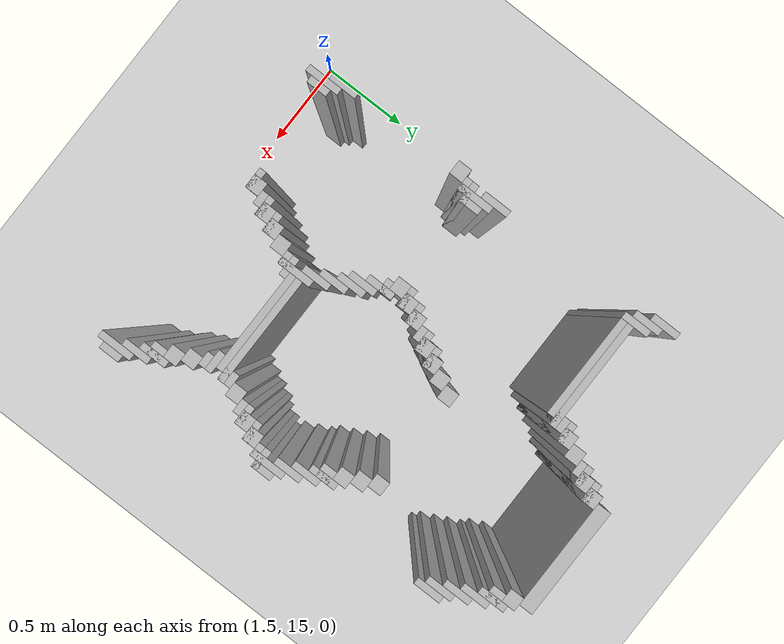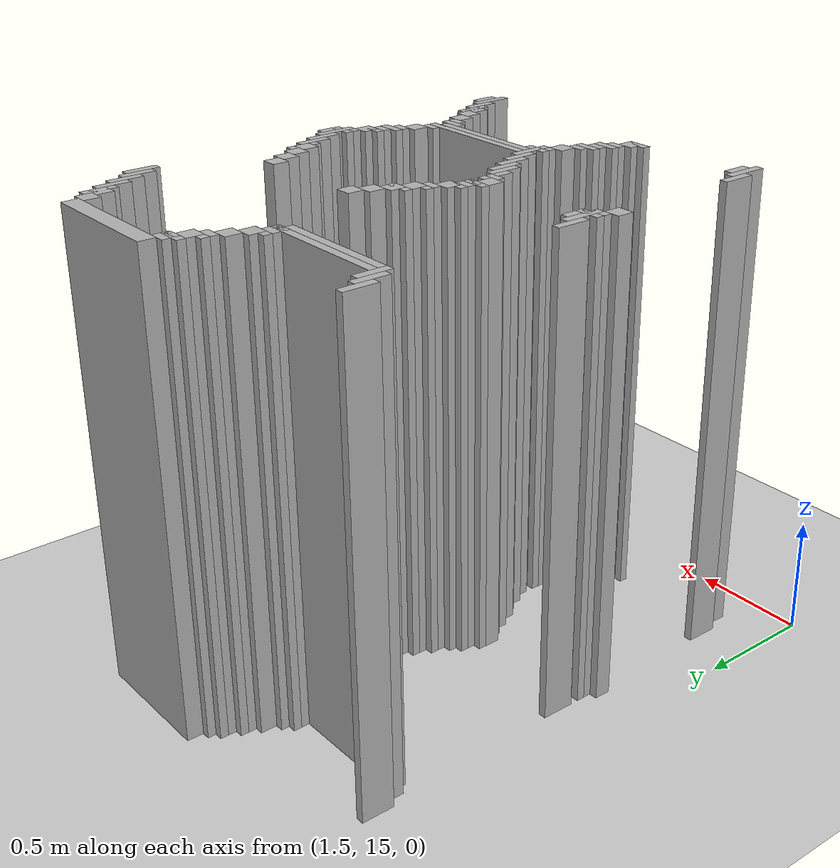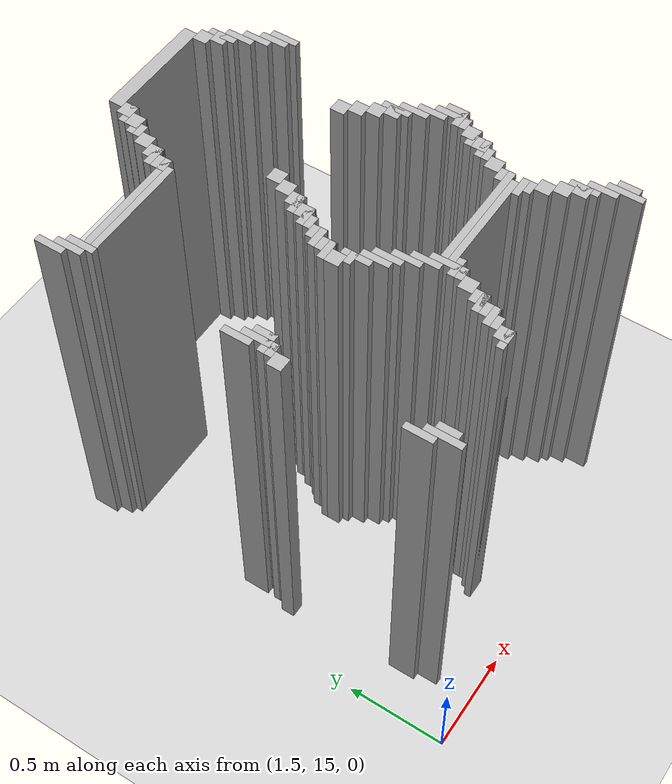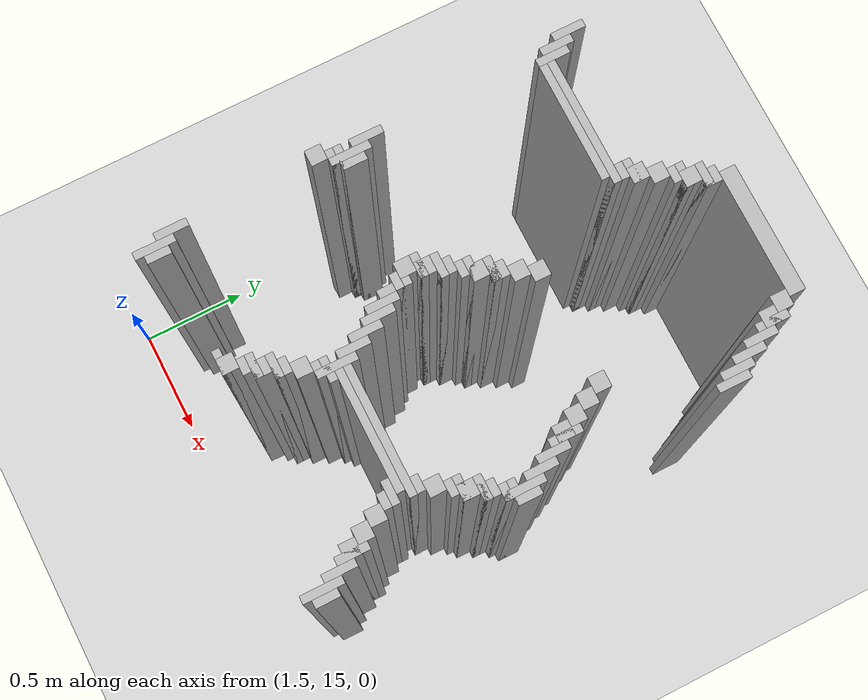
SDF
<sdf version="1.6">
 <world name="slam_world">
  <model name="ground_plane">
   <static>true</static>
   <link name="link">
    <collision name="collision">
     <geometry><plane><normal>0 0 1</normal><size>100 100</size></plane></geometry>
    </collision>
    <visual name="visual">
     <geometry><plane><normal>0 0 1</normal><size>100 100</size></plane></geometry>
     <material>
      <ambient>0.8 0.8 0.8 1</ambient>
      <diffuse>0.8 0.8 0.8 1</diffuse>
      <specular>0.8 0.8 0.8 1</specular>
     </material>
    </visual>
   </link>
  </model>
  <model name="wall_1">
   <static>true</static>
   <pose>2.7494199535962878 17.366589327146173 1.0 0 0 0</pose>
   <link name="link">
    <collision name="collision">
     <geometry><box><size>0.5568445475638051 0.06960556844547564 2.0</size></box></geometry>
    </collision>
    <visual name="visual">
     <geometry><box><size>0.5568445475638051 0.06960556844547564 2.0</size></box></geometry>
     <material><ambient>0.5 0.5 0.5 1</ambient><diffuse>0.7 0.7 0.7 1</diffuse></material>
    </visual>
   </link>
  </model>
  <model name="wall_13">
   <static>true</static>
   <pose>2.470997679814385 17.296983758700694 1.0 0 0 0</pose>
   <link name="link">
    <collision name="collision">
     <geometry><box><size>0.06960556844547564 0.06960556844547564 2.0</size></box></geometry>
    </collision>
    <visual name="visual">
     <geometry><box><size>0.06960556844547564 0.06960556844547564 2.0</size></box></geometry>
     <material><ambient>0.5 0.5 0.5 1</ambient><diffuse>0.7 0.7 0.7 1</diffuse></material>
    </visual>
   </link>
  </model>
  <model name="wall_14">
   <static>true</static>
   <pose>3.02784222737819 17.296983758700694 1.0 0 0 0</pose>
   <link name="link">
    <collision name="collision">
     <geometry><box><size>0.06960556844547564 0.06960556844547564 2.0</size></box></geometry>
    </collision>
    <visual name="visual">
     <geometry><box><size>0.06960556844547564 0.06960556844547564 2.0</size></box></geometry>
     <material><ambient>0.5 0.5 0.5 1</ambient><diffuse>0.7 0.7 0.7 1</diffuse></material>
    </visual>
   </link>
  </model>
  <model name="wall_33">
   <static>true</static>
   <pose>2.453596287703016 17.279582366589327 1.0 0 0 0</pose>
   <link name="link">
    <collision name="collision">
     <geometry><box><size>0.10440835266821345 0.03480278422273782 2.0</size></box></geometry>
    </collision>
    <visual name="visual">
     <geometry><box><size>0.10440835266821345 0.03480278422273782 2.0</size></box></geometry>
     <material><ambient>0.5 0.5 0.5 1</ambient><diffuse>0.7 0.7 0.7 1</diffuse></material>
    </visual>
   </link>
  </model>
  <model name="wall_34">
   <static>true</static>
   <pose>3.0800464037122968 17.22737819025522 1.0 0 0 0</pose>
   <link name="link">
    <collision name="collision">
     <geometry><box><size>0.03480278422273782 0.13921113689095127 2.0</size></box></geometry>
    </collision>
    <visual name="visual">
     <geometry><box><size>0.03480278422273782 0.13921113689095127 2.0</size></box></geometry>
     <material><ambient>0.5 0.5 0.5 1</ambient><diffuse>0.7 0.7 0.7 1</diffuse></material>
    </visual>
   </link>
  </model>
  <model name="wall_53">
   <static>true</static>
   <pose>2.436194895591647 17.22737819025522 1.0 0 0 0</pose>
   <link name="link">
    <collision name="collision">
     <geometry><box><size>0.06960556844547564 0.06960556844547564 2.0</size></box></geometry>
    </collision>
    <visual name="visual">
     <geometry><box><size>0.06960556844547564 0.06960556844547564 2.0</size></box></geometry>
     <material><ambient>0.5 0.5 0.5 1</ambient><diffuse>0.7 0.7 0.7 1</diffuse></material>
    </visual>
   </link>
  </model>
  <model name="wall_54">
   <static>true</static>
   <pose>3.062645011600928 17.22737819025522 1.0 0 0 0</pose>
   <link name="link">
    <collision name="collision">
     <geometry><box><size>0.06960556844547564 0.06960556844547564 2.0</size></box></geometry>
    </collision>
    <visual name="visual">
     <geometry><box><size>0.06960556844547564 0.06960556844547564 2.0</size></box></geometry>
     <material><ambient>0.5 0.5 0.5 1</ambient><diffuse>0.7 0.7 0.7 1</diffuse></material>
    </visual>
   </link>
  </model>
  <model name="wall_73">
   <static>true</static>
   <pose>2.4187935034802783 17.209976798143853 1.0 0 0 0</pose>
   <link name="link">
    <collision name="collision">
     <geometry><box><size>0.10440835266821345 0.03480278422273782 2.0</size></box></geometry>
    </collision>
    <visual name="visual">
     <geometry><box><size>0.10440835266821345 0.03480278422273782 2.0</size></box></geometry>
     <material><ambient>0.5 0.5 0.5 1</ambient><diffuse>0.7 0.7 0.7 1</diffuse></material>
    </visual>
   </link>
  </model>
  <model name="wall_74">
   <static>true</static>
   <pose>3.1148491879350346 17.157772621809745 1.0 0 0 0</pose>
   <link name="link">
    <collision name="collision">
     <geometry><box><size>0.03480278422273782 0.13921113689095127 2.0</size></box></geometry>
    </collision>
    <visual name="visual">
     <geometry><box><size>0.03480278422273782 0.13921113689095127 2.0</size></box></geometry>
     <material><ambient>0.5 0.5 0.5 1</ambient><diffuse>0.7 0.7 0.7 1</diffuse></material>
    </visual>
   </link>
  </model>
  <model name="wall_92">
   <static>true</static>
   <pose>2.4013921113689096 17.17517401392111 1.0 0 0 0</pose>
   <link name="link">
    <collision name="collision">
     <geometry><box><size>0.06960556844547564 0.03480278422273782 2.0</size></box></geometry>
    </collision>
    <visual name="visual">
     <geometry><box><size>0.06960556844547564 0.03480278422273782 2.0</size></box></geometry>
     <material><ambient>0.5 0.5 0.5 1</ambient><diffuse>0.7 0.7 0.7 1</diffuse></material>
    </visual>
   </link>
  </model>
  <model name="wall_102">
   <static>true</static>
   <pose>1.6879350348027842 17.08816705336427 1.0 0 0 0</pose>
   <link name="link">
    <collision name="collision">
     <geometry><box><size>0.03480278422273782 0.13921113689095127 2.0</size></box></geometry>
    </collision>
    <visual name="visual">
     <geometry><box><size>0.03480278422273782 0.13921113689095127 2.0</size></box></geometry>
     <material><ambient>0.5 0.5 0.5 1</ambient><diffuse>0.7 0.7 0.7 1</diffuse></material>
    </visual>
   </link>
  </model>
  <model name="wall_103">
   <static>true</static>
   <pose>2.3665893271461718 17.122969837587007 1.0 0 0 0</pose>
   <link name="link">
    <collision name="collision">
     <geometry><box><size>0.06960556844547564 0.06960556844547564 2.0</size></box></geometry>
    </collision>
    <visual name="visual">
     <geometry><box><size>0.06960556844547564 0.06960556844547564 2.0</size></box></geometry>
     <material><ambient>0.5 0.5 0.5 1</ambient><diffuse>0.7 0.7 0.7 1</diffuse></material>
    </visual>
   </link>
  </model>
  <model name="wall_104">
   <static>true</static>
   <pose>3.1496519721577725 17.08816705336427 1.0 0 0 0</pose>
   <link name="link">
    <collision name="collision">
     <geometry><box><size>0.03480278422273782 0.13921113689095127 2.0</size></box></geometry>
    </collision>
    <visual name="visual">
     <geometry><box><size>0.03480278422273782 0.13921113689095127 2.0</size></box></geometry>
     <material><ambient>0.5 0.5 0.5 1</ambient><diffuse>0.7 0.7 0.7 1</diffuse></material>
    </visual>
   </link>
  </model>
  <model name="wall_122">
   <static>true</static>
   <pose>1.722737819025522 17.01856148491879 1.0 0 0 0</pose>
   <link name="link">
    <collision name="collision">
     <geometry><box><size>0.03480278422273782 0.13921113689095127 2.0</size></box></geometry>
    </collision>
    <visual name="visual">
     <geometry><box><size>0.03480278422273782 0.13921113689095127 2.0</size></box></geometry>
     <material><ambient>0.5 0.5 0.5 1</ambient><diffuse>0.7 0.7 0.7 1</diffuse></material>
    </visual>
   </link>
  </model>
  <model name="wall_123">
   <static>true</static>
   <pose>2.331786542923434 17.053364269141532 1.0 0 0 0</pose>
   <link name="link">
    <collision name="collision">
     <geometry><box><size>0.06960556844547564 0.06960556844547564 2.0</size></box></geometry>
    </collision>
    <visual name="visual">
     <geometry><box><size>0.06960556844547564 0.06960556844547564 2.0</size></box></geometry>
     <material><ambient>0.5 0.5 0.5 1</ambient><diffuse>0.7 0.7 0.7 1</diffuse></material>
    </visual>
   </link>
  </model>
  <model name="wall_124">
   <static>true</static>
   <pose>3.1844547563805103 17.01856148491879 1.0 0 0 0</pose>
   <link name="link">
    <collision name="collision">
     <geometry><box><size>0.03480278422273782 0.13921113689095127 2.0</size></box></geometry>
    </collision>
    <visual name="visual">
     <geometry><box><size>0.03480278422273782 0.13921113689095127 2.0</size></box></geometry>
     <material><ambient>0.5 0.5 0.5 1</ambient><diffuse>0.7 0.7 0.7 1</diffuse></material>
    </visual>
   </link>
  </model>
  <model name="wall_142">
   <static>true</static>
   <pose>1.75754060324826 16.983758700696054 1.0 0 0 0</pose>
   <link name="link">
    <collision name="collision">
     <geometry><box><size>0.03480278422273782 0.13921113689095127 2.0</size></box></geometry>
    </collision>
    <visual name="visual">
     <geometry><box><size>0.03480278422273782 0.13921113689095127 2.0</size></box></geometry>
     <material><ambient>0.5 0.5 0.5 1</ambient><diffuse>0.7 0.7 0.7 1</diffuse></material>
    </visual>
   </link>
  </model>
  <model name="wall_143">
   <static>true</static>
   <pose>2.3143851508120648 17.035962877030162 1.0 0 0 0</pose>
   <link name="link">
    <collision name="collision">
     <geometry><box><size>0.10440835266821345 0.03480278422273782 2.0</size></box></geometry>
    </collision>
    <visual name="visual">
     <geometry><box><size>0.10440835266821345 0.03480278422273782 2.0</size></box></geometry>
     <material><ambient>0.5 0.5 0.5 1</ambient><diffuse>0.7 0.7 0.7 1</diffuse></material>
    </visual>
   </link>
  </model>
  <model name="wall_144">
   <static>true</static>
   <pose>3.219257540603248 16.983758700696054 1.0 0 0 0</pose>
   <link name="link">
    <collision name="collision">
     <geometry><box><size>0.03480278422273782 0.13921113689095127 2.0</size></box></geometry>
    </collision>
    <visual name="visual">
     <geometry><box><size>0.03480278422273782 0.13921113689095127 2.0</size></box></geometry>
     <material><ambient>0.5 0.5 0.5 1</ambient><diffuse>0.7 0.7 0.7 1</diffuse></material>
    </visual>
   </link>
  </model>
  <model name="wall_162">
   <static>true</static>
   <pose>2.296983758700696 16.983758700696054 1.0 0 0 0</pose>
   <link name="link">
    <collision name="collision">
     <geometry><box><size>0.06960556844547564 0.06960556844547564 2.0</size></box></geometry>
    </collision>
    <visual name="visual">
     <geometry><box><size>0.06960556844547564 0.06960556844547564 2.0</size></box></geometry>
     <material><ambient>0.5 0.5 0.5 1</ambient><diffuse>0.7 0.7 0.7 1</diffuse></material>
    </visual>
   </link>
  </model>
  <model name="wall_172">
   <static>true</static>
   <pose>2.053364269141531 16.966357308584687 1.0 0 0 0</pose>
   <link name="link">
    <collision name="collision">
     <geometry><box><size>0.5568445475638051 0.03480278422273782 2.0</size></box></geometry>
    </collision>
    <visual name="visual">
     <geometry><box><size>0.5568445475638051 0.03480278422273782 2.0</size></box></geometry>
     <material><ambient>0.5 0.5 0.5 1</ambient><diffuse>0.7 0.7 0.7 1</diffuse></material>
    </visual>
   </link>
  </model>
  <model name="wall_183">
   <static>true</static>
   <pose>2.0359628770301623 16.93155452436195 1.0 0 0 0</pose>
   <link name="link">
    <collision name="collision">
     <geometry><box><size>0.5220417633410672 0.03480278422273782 2.0</size></box></geometry>
    </collision>
    <visual name="visual">
     <geometry><box><size>0.5220417633410672 0.03480278422273782 2.0</size></box></geometry>
     <material><ambient>0.5 0.5 0.5 1</ambient><diffuse>0.7 0.7 0.7 1</diffuse></material>
    </visual>
   </link>
  </model>
  <model name="wall_259">
   <static>true</static>
   <pose>2.5058004640371228 16.531322505800464 1.0 0 0 0</pose>
   <link name="link">
    <collision name="collision">
     <geometry><box><size>0.06960556844547564 0.06960556844547564 2.0</size></box></geometry>
    </collision>
    <visual name="visual">
     <geometry><box><size>0.06960556844547564 0.06960556844547564 2.0</size></box></geometry>
     <material><ambient>0.5 0.5 0.5 1</ambient><diffuse>0.7 0.7 0.7 1</diffuse></material>
    </visual>
   </link>
  </model>
  <model name="wall_260">
   <static>true</static>
   <pose>2.9930394431554523 16.531322505800464 1.0 0 0 0</pose>
   <link name="link">
    <collision name="collision">
     <geometry><box><size>0.06960556844547564 0.06960556844547564 2.0</size></box></geometry>
    </collision>
    <visual name="visual">
     <geometry><box><size>0.06960556844547564 0.06960556844547564 2.0</size></box></geometry>
     <material><ambient>0.5 0.5 0.5 1</ambient><diffuse>0.7 0.7 0.7 1</diffuse></material>
    </visual>
   </link>
  </model>
  <model name="wall_279">
   <static>true</static>
   <pose>2.470997679814385 16.46171693735499 1.0 0 0 0</pose>
   <link name="link">
    <collision name="collision">
     <geometry><box><size>0.06960556844547564 0.06960556844547564 2.0</size></box></geometry>
    </collision>
    <visual name="visual">
     <geometry><box><size>0.06960556844547564 0.06960556844547564 2.0</size></box></geometry>
     <material><ambient>0.5 0.5 0.5 1</ambient><diffuse>0.7 0.7 0.7 1</diffuse></material>
    </visual>
   </link>
  </model>
  <model name="wall_280">
   <static>true</static>
   <pose>3.02784222737819 16.46171693735499 1.0 0 0 0</pose>
   <link name="link">
    <collision name="collision">
     <geometry><box><size>0.06960556844547564 0.06960556844547564 2.0</size></box></geometry>
    </collision>
    <visual name="visual">
     <geometry><box><size>0.06960556844547564 0.06960556844547564 2.0</size></box></geometry>
     <material><ambient>0.5 0.5 0.5 1</ambient><diffuse>0.7 0.7 0.7 1</diffuse></material>
    </visual>
   </link>
  </model>
  <model name="wall_302">
   <static>true</static>
   <pose>2.436194895591647 16.39211136890951 1.0 0 0 0</pose>
   <link name="link">
    <collision name="collision">
     <geometry><box><size>0.06960556844547564 0.06960556844547564 2.0</size></box></geometry>
    </collision>
    <visual name="visual">
     <geometry><box><size>0.06960556844547564 0.06960556844547564 2.0</size></box></geometry>
     <material><ambient>0.5 0.5 0.5 1</ambient><diffuse>0.7 0.7 0.7 1</diffuse></material>
    </visual>
   </link>
  </model>
  <model name="wall_303">
   <static>true</static>
   <pose>3.062645011600928 16.39211136890951 1.0 0 0 0</pose>
   <link name="link">
    <collision name="collision">
     <geometry><box><size>0.06960556844547564 0.06960556844547564 2.0</size></box></geometry>
    </collision>
    <visual name="visual">
     <geometry><box><size>0.06960556844547564 0.06960556844547564 2.0</size></box></geometry>
     <material><ambient>0.5 0.5 0.5 1</ambient><diffuse>0.7 0.7 0.7 1</diffuse></material>
    </visual>
   </link>
  </model>
  <model name="wall_319">
   <static>true</static>
   <pose>2.4187935034802783 16.374709976798144 1.0 0 0 0</pose>
   <link name="link">
    <collision name="collision">
     <geometry><box><size>0.10440835266821345 0.03480278422273782 2.0</size></box></geometry>
    </collision>
    <visual name="visual">
     <geometry><box><size>0.10440835266821345 0.03480278422273782 2.0</size></box></geometry>
     <material><ambient>0.5 0.5 0.5 1</ambient><diffuse>0.7 0.7 0.7 1</diffuse></material>
    </visual>
   </link>
  </model>
  <model name="wall_320">
   <static>true</static>
   <pose>3.1148491879350346 16.322505800464036 1.0 0 0 0</pose>
   <link name="link">
    <collision name="collision">
     <geometry><box><size>0.03480278422273782 0.13921113689095127 2.0</size></box></geometry>
    </collision>
    <visual name="visual">
     <geometry><box><size>0.03480278422273782 0.13921113689095127 2.0</size></box></geometry>
     <material><ambient>0.5 0.5 0.5 1</ambient><diffuse>0.7 0.7 0.7 1</diffuse></material>
    </visual>
   </link>
  </model>
  <model name="wall_336">
   <static>true</static>
   <pose>2.4013921113689096 16.322505800464036 1.0 0 0 0</pose>
   <link name="link">
    <collision name="collision">
     <geometry><box><size>0.06960556844547564 0.06960556844547564 2.0</size></box></geometry>
    </collision>
    <visual name="visual">
     <geometry><box><size>0.06960556844547564 0.06960556844547564 2.0</size></box></geometry>
     <material><ambient>0.5 0.5 0.5 1</ambient><diffuse>0.7 0.7 0.7 1</diffuse></material>
    </visual>
   </link>
  </model>
  <model name="wall_337">
   <static>true</static>
   <pose>3.097447795823666 16.322505800464036 1.0 0 0 0</pose>
   <link name="link">
    <collision name="collision">
     <geometry><box><size>0.06960556844547564 0.06960556844547564 2.0</size></box></geometry>
    </collision>
    <visual name="visual">
     <geometry><box><size>0.06960556844547564 0.06960556844547564 2.0</size></box></geometry>
     <material><ambient>0.5 0.5 0.5 1</ambient><diffuse>0.7 0.7 0.7 1</diffuse></material>
    </visual>
   </link>
  </model>
  <model name="wall_353">
   <static>true</static>
   <pose>2.3839907192575405 16.30510440835267 1.0 0 0 0</pose>
   <link name="link">
    <collision name="collision">
     <geometry><box><size>0.10440835266821345 0.03480278422273782 2.0</size></box></geometry>
    </collision>
    <visual name="visual">
     <geometry><box><size>0.10440835266821345 0.03480278422273782 2.0</size></box></geometry>
     <material><ambient>0.5 0.5 0.5 1</ambient><diffuse>0.7 0.7 0.7 1</diffuse></material>
    </visual>
   </link>
  </model>
  <model name="wall_354">
   <static>true</static>
   <pose>3.1496519721577725 16.25290023201856 1.0 0 0 0</pose>
   <link name="link">
    <collision name="collision">
     <geometry><box><size>0.03480278422273782 0.13921113689095127 2.0</size></box></geometry>
    </collision>
    <visual name="visual">
     <geometry><box><size>0.03480278422273782 0.13921113689095127 2.0</size></box></geometry>
     <material><ambient>0.5 0.5 0.5 1</ambient><diffuse>0.7 0.7 0.7 1</diffuse></material>
    </visual>
   </link>
  </model>
  <model name="wall_368">
   <static>true</static>
   <pose>2.3665893271461718 16.270301624129928 1.0 0 0 0</pose>
   <link name="link">
    <collision name="collision">
     <geometry><box><size>0.06960556844547564 0.03480278422273782 2.0</size></box></geometry>
    </collision>
    <visual name="visual">
     <geometry><box><size>0.06960556844547564 0.03480278422273782 2.0</size></box></geometry>
     <material><ambient>0.5 0.5 0.5 1</ambient><diffuse>0.7 0.7 0.7 1</diffuse></material>
    </visual>
   </link>
  </model>
  <model name="wall_377">
   <static>true</static>
   <pose>1.722737819025522 16.183294663573086 1.0 0 0 0</pose>
   <link name="link">
    <collision name="collision">
     <geometry><box><size>0.03480278422273782 0.13921113689095127 2.0</size></box></geometry>
    </collision>
    <visual name="visual">
     <geometry><box><size>0.03480278422273782 0.13921113689095127 2.0</size></box></geometry>
     <material><ambient>0.5 0.5 0.5 1</ambient><diffuse>0.7 0.7 0.7 1</diffuse></material>
    </visual>
   </link>
  </model>
  <model name="wall_378">
   <static>true</static>
   <pose>2.331786542923434 16.218097447795824 1.0 0 0 0</pose>
   <link name="link">
    <collision name="collision">
     <geometry><box><size>0.06960556844547564 0.06960556844547564 2.0</size></box></geometry>
    </collision>
    <visual name="visual">
     <geometry><box><size>0.06960556844547564 0.06960556844547564 2.0</size></box></geometry>
     <material><ambient>0.5 0.5 0.5 1</ambient><diffuse>0.7 0.7 0.7 1</diffuse></material>
    </visual>
   </link>
  </model>
  <model name="wall_379">
   <static>true</static>
   <pose>3.1844547563805103 16.183294663573086 1.0 0 0 0</pose>
   <link name="link">
    <collision name="collision">
     <geometry><box><size>0.03480278422273782 0.13921113689095127 2.0</size></box></geometry>
    </collision>
    <visual name="visual">
     <geometry><box><size>0.03480278422273782 0.13921113689095127 2.0</size></box></geometry>
     <material><ambient>0.5 0.5 0.5 1</ambient><diffuse>0.7 0.7 0.7 1</diffuse></material>
    </visual>
   </link>
  </model>
  <model name="wall_393">
   <static>true</static>
   <pose>2.3143851508120648 16.200696055684453 1.0 0 0 0</pose>
   <link name="link">
    <collision name="collision">
     <geometry><box><size>0.10440835266821345 0.03480278422273782 2.0</size></box></geometry>
    </collision>
    <visual name="visual">
     <geometry><box><size>0.10440835266821345 0.03480278422273782 2.0</size></box></geometry>
     <material><ambient>0.5 0.5 0.5 1</ambient><diffuse>0.7 0.7 0.7 1</diffuse></material>
    </visual>
   </link>
  </model>
  <model name="wall_402">
   <static>true</static>
   <pose>1.75754060324826 16.09628770301624 1.0 0 0 0</pose>
   <link name="link">
    <collision name="collision">
     <geometry><box><size>0.03480278422273782 0.17401392111368907 2.0</size></box></geometry>
    </collision>
    <visual name="visual">
     <geometry><box><size>0.03480278422273782 0.17401392111368907 2.0</size></box></geometry>
     <material><ambient>0.5 0.5 0.5 1</ambient><diffuse>0.7 0.7 0.7 1</diffuse></material>
    </visual>
   </link>
  </model>
  <model name="wall_403">
   <static>true</static>
   <pose>2.296983758700696 16.14849187935035 1.0 0 0 0</pose>
   <link name="link">
    <collision name="collision">
     <geometry><box><size>0.06960556844547564 0.06960556844547564 2.0</size></box></geometry>
    </collision>
    <visual name="visual">
     <geometry><box><size>0.06960556844547564 0.06960556844547564 2.0</size></box></geometry>
     <material><ambient>0.5 0.5 0.5 1</ambient><diffuse>0.7 0.7 0.7 1</diffuse></material>
    </visual>
   </link>
  </model>
  <model name="wall_404">
   <static>true</static>
   <pose>3.219257540603248 16.09628770301624 1.0 0 0 0</pose>
   <link name="link">
    <collision name="collision">
     <geometry><box><size>0.03480278422273782 0.17401392111368907 2.0</size></box></geometry>
    </collision>
    <visual name="visual">
     <geometry><box><size>0.03480278422273782 0.17401392111368907 2.0</size></box></geometry>
     <material><ambient>0.5 0.5 0.5 1</ambient><diffuse>0.7 0.7 0.7 1</diffuse></material>
    </visual>
   </link>
  </model>
  <model name="wall_419">
   <static>true</static>
   <pose>1.7923433874709975 16.09628770301624 1.0 0 0 0</pose>
   <link name="link">
    <collision name="collision">
     <geometry><box><size>0.03480278422273782 0.10440835266821345 2.0</size></box></geometry>
    </collision>
    <visual name="visual">
     <geometry><box><size>0.03480278422273782 0.10440835266821345 2.0</size></box></geometry>
     <material><ambient>0.5 0.5 0.5 1</ambient><diffuse>0.7 0.7 0.7 1</diffuse></material>
    </visual>
   </link>
  </model>
  <model name="wall_420">
   <static>true</static>
   <pose>2.279582366589327 16.13109048723898 1.0 0 0 0</pose>
   <link name="link">
    <collision name="collision">
     <geometry><box><size>0.10440835266821345 0.03480278422273782 2.0</size></box></geometry>
    </collision>
    <visual name="visual">
     <geometry><box><size>0.10440835266821345 0.03480278422273782 2.0</size></box></geometry>
     <material><ambient>0.5 0.5 0.5 1</ambient><diffuse>0.7 0.7 0.7 1</diffuse></material>
    </visual>
   </link>
  </model>
  <model name="wall_421">
   <static>true</static>
   <pose>3.254060324825986 16.09628770301624 1.0 0 0 0</pose>
   <link name="link">
    <collision name="collision">
     <geometry><box><size>0.03480278422273782 0.10440835266821345 2.0</size></box></geometry>
    </collision>
    <visual name="visual">
     <geometry><box><size>0.03480278422273782 0.10440835266821345 2.0</size></box></geometry>
     <material><ambient>0.5 0.5 0.5 1</ambient><diffuse>0.7 0.7 0.7 1</diffuse></material>
    </visual>
   </link>
  </model>
  <model name="wall_432">
   <static>true</static>
   <pose>2.262180974477958 16.07888631090487 1.0 0 0 0</pose>
   <link name="link">
    <collision name="collision">
     <geometry><box><size>0.06960556844547564 0.06960556844547564 2.0</size></box></geometry>
    </collision>
    <visual name="visual">
     <geometry><box><size>0.06960556844547564 0.06960556844547564 2.0</size></box></geometry>
     <material><ambient>0.5 0.5 0.5 1</ambient><diffuse>0.7 0.7 0.7 1</diffuse></material>
    </visual>
   </link>
  </model>
  <model name="wall_444">
   <static>true</static>
   <pose>1.75754060324826 16.061484918793504 1.0 0 0 0</pose>
   <link name="link">
    <collision name="collision">
     <geometry><box><size>0.10440835266821345 0.03480278422273782 2.0</size></box></geometry>
    </collision>
    <visual name="visual">
     <geometry><box><size>0.10440835266821345 0.03480278422273782 2.0</size></box></geometry>
     <material><ambient>0.5 0.5 0.5 1</ambient><diffuse>0.7 0.7 0.7 1</diffuse></material>
    </visual>
   </link>
  </model>
  <model name="wall_445">
   <static>true</static>
   <pose>2.3143851508120648 16.009280742459396 1.0 0 0 0</pose>
   <link name="link">
    <collision name="collision">
     <geometry><box><size>0.03480278422273782 0.13921113689095127 2.0</size></box></geometry>
    </collision>
    <visual name="visual">
     <geometry><box><size>0.03480278422273782 0.13921113689095127 2.0</size></box></geometry>
     <material><ambient>0.5 0.5 0.5 1</ambient><diffuse>0.7 0.7 0.7 1</diffuse></material>
    </visual>
   </link>
  </model>
  <model name="wall_446">
   <static>true</static>
   <pose>3.219257540603248 16.061484918793504 1.0 0 0 0</pose>
   <link name="link">
    <collision name="collision">
     <geometry><box><size>0.10440835266821345 0.03480278422273782 2.0</size></box></geometry>
    </collision>
    <visual name="visual">
     <geometry><box><size>0.10440835266821345 0.03480278422273782 2.0</size></box></geometry>
     <material><ambient>0.5 0.5 0.5 1</ambient><diffuse>0.7 0.7 0.7 1</diffuse></material>
    </visual>
   </link>
  </model>
  <model name="wall_457">
   <static>true</static>
   <pose>1.740139211136891 16.026682134570766 1.0 0 0 0</pose>
   <link name="link">
    <collision name="collision">
     <geometry><box><size>0.06960556844547564 0.03480278422273782 2.0</size></box></geometry>
    </collision>
    <visual name="visual">
     <geometry><box><size>0.06960556844547564 0.03480278422273782 2.0</size></box></geometry>
     <material><ambient>0.5 0.5 0.5 1</ambient><diffuse>0.7 0.7 0.7 1</diffuse></material>
    </visual>
   </link>
  </model>
  <model name="wall_458">
   <static>true</static>
   <pose>2.296983758700696 16.026682134570766 1.0 0 0 0</pose>
   <link name="link">
    <collision name="collision">
     <geometry><box><size>0.06960556844547564 0.03480278422273782 2.0</size></box></geometry>
    </collision>
    <visual name="visual">
     <geometry><box><size>0.06960556844547564 0.03480278422273782 2.0</size></box></geometry>
     <material><ambient>0.5 0.5 0.5 1</ambient><diffuse>0.7 0.7 0.7 1</diffuse></material>
    </visual>
   </link>
  </model>
  <model name="wall_459">
   <static>true</static>
   <pose>3.201856148491879 16.026682134570766 1.0 0 0 0</pose>
   <link name="link">
    <collision name="collision">
     <geometry><box><size>0.06960556844547564 0.03480278422273782 2.0</size></box></geometry>
    </collision>
    <visual name="visual">
     <geometry><box><size>0.06960556844547564 0.03480278422273782 2.0</size></box></geometry>
     <material><ambient>0.5 0.5 0.5 1</ambient><diffuse>0.7 0.7 0.7 1</diffuse></material>
    </visual>
   </link>
  </model>
  <model name="wall_470">
   <static>true</static>
   <pose>1.705336426914153 15.974477958236658 1.0 0 0 0</pose>
   <link name="link">
    <collision name="collision">
     <geometry><box><size>0.06960556844547564 0.06960556844547564 2.0</size></box></geometry>
    </collision>
    <visual name="visual">
     <geometry><box><size>0.06960556844547564 0.06960556844547564 2.0</size></box></geometry>
     <material><ambient>0.5 0.5 0.5 1</ambient><diffuse>0.7 0.7 0.7 1</diffuse></material>
    </visual>
   </link>
  </model>
  <model name="wall_471">
   <static>true</static>
   <pose>2.3491879350348026 15.93967517401392 1.0 0 0 0</pose>
   <link name="link">
    <collision name="collision">
     <geometry><box><size>0.03480278422273782 0.13921113689095127 2.0</size></box></geometry>
    </collision>
    <visual name="visual">
     <geometry><box><size>0.03480278422273782 0.13921113689095127 2.0</size></box></geometry>
     <material><ambient>0.5 0.5 0.5 1</ambient><diffuse>0.7 0.7 0.7 1</diffuse></material>
    </visual>
   </link>
  </model>
  <model name="wall_472">
   <static>true</static>
   <pose>3.167053364269141 15.974477958236658 1.0 0 0 0</pose>
   <link name="link">
    <collision name="collision">
     <geometry><box><size>0.06960556844547564 0.06960556844547564 2.0</size></box></geometry>
    </collision>
    <visual name="visual">
     <geometry><box><size>0.06960556844547564 0.06960556844547564 2.0</size></box></geometry>
     <material><ambient>0.5 0.5 0.5 1</ambient><diffuse>0.7 0.7 0.7 1</diffuse></material>
    </visual>
   </link>
  </model>
  <model name="wall_484">
   <static>true</static>
   <pose>2.3839907192575405 15.904872389791183 1.0 0 0 0</pose>
   <link name="link">
    <collision name="collision">
     <geometry><box><size>0.03480278422273782 0.13921113689095127 2.0</size></box></geometry>
    </collision>
    <visual name="visual">
     <geometry><box><size>0.03480278422273782 0.13921113689095127 2.0</size></box></geometry>
     <material><ambient>0.5 0.5 0.5 1</ambient><diffuse>0.7 0.7 0.7 1</diffuse></material>
    </visual>
   </link>
  </model>
  <model name="wall_485">
   <static>true</static>
   <pose>3.1496519721577725 15.95707656612529 1.0 0 0 0</pose>
   <link name="link">
    <collision name="collision">
     <geometry><box><size>0.10440835266821345 0.03480278422273782 2.0</size></box></geometry>
    </collision>
    <visual name="visual">
     <geometry><box><size>0.10440835266821345 0.03480278422273782 2.0</size></box></geometry>
     <material><ambient>0.5 0.5 0.5 1</ambient><diffuse>0.7 0.7 0.7 1</diffuse></material>
    </visual>
   </link>
  </model>
  <model name="wall_496">
   <static>true</static>
   <pose>3.1322505800464038 15.904872389791183 1.0 0 0 0</pose>
   <link name="link">
    <collision name="collision">
     <geometry><box><size>0.06960556844547564 0.06960556844547564 2.0</size></box></geometry>
    </collision>
    <visual name="visual">
     <geometry><box><size>0.06960556844547564 0.06960556844547564 2.0</size></box></geometry>
     <material><ambient>0.5 0.5 0.5 1</ambient><diffuse>0.7 0.7 0.7 1</diffuse></material>
    </visual>
   </link>
  </model>
  <model name="wall_506">
   <static>true</static>
   <pose>2.4187935034802783 15.835266821345707 1.0 0 0 0</pose>
   <link name="link">
    <collision name="collision">
     <geometry><box><size>0.03480278422273782 0.13921113689095127 2.0</size></box></geometry>
    </collision>
    <visual name="visual">
     <geometry><box><size>0.03480278422273782 0.13921113689095127 2.0</size></box></geometry>
     <material><ambient>0.5 0.5 0.5 1</ambient><diffuse>0.7 0.7 0.7 1</diffuse></material>
    </visual>
   </link>
  </model>
  <model name="wall_507">
   <static>true</static>
   <pose>3.1148491879350346 15.887470997679813 1.0 0 0 0</pose>
   <link name="link">
    <collision name="collision">
     <geometry><box><size>0.10440835266821345 0.03480278422273782 2.0</size></box></geometry>
    </collision>
    <visual name="visual">
     <geometry><box><size>0.10440835266821345 0.03480278422273782 2.0</size></box></geometry>
     <material><ambient>0.5 0.5 0.5 1</ambient><diffuse>0.7 0.7 0.7 1</diffuse></material>
    </visual>
   </link>
  </model>
  <model name="wall_518">
   <static>true</static>
   <pose>3.097447795823666 15.852668213457076 1.0 0 0 0</pose>
   <link name="link">
    <collision name="collision">
     <geometry><box><size>0.06960556844547564 0.03480278422273782 2.0</size></box></geometry>
    </collision>
    <visual name="visual">
     <geometry><box><size>0.06960556844547564 0.03480278422273782 2.0</size></box></geometry>
     <material><ambient>0.5 0.5 0.5 1</ambient><diffuse>0.7 0.7 0.7 1</diffuse></material>
    </visual>
   </link>
  </model>
  <model name="wall_526">
   <static>true</static>
   <pose>2.453596287703016 15.765661252900232 1.0 0 0 0</pose>
   <link name="link">
    <collision name="collision">
     <geometry><box><size>0.03480278422273782 0.13921113689095127 2.0</size></box></geometry>
    </collision>
    <visual name="visual">
     <geometry><box><size>0.03480278422273782 0.13921113689095127 2.0</size></box></geometry>
     <material><ambient>0.5 0.5 0.5 1</ambient><diffuse>0.7 0.7 0.7 1</diffuse></material>
    </visual>
   </link>
  </model>
  <model name="wall_527">
   <static>true</static>
   <pose>3.062645011600928 15.80046403712297 1.0 0 0 0</pose>
   <link name="link">
    <collision name="collision">
     <geometry><box><size>0.06960556844547564 0.06960556844547564 2.0</size></box></geometry>
    </collision>
    <visual name="visual">
     <geometry><box><size>0.06960556844547564 0.06960556844547564 2.0</size></box></geometry>
     <material><ambient>0.5 0.5 0.5 1</ambient><diffuse>0.7 0.7 0.7 1</diffuse></material>
    </visual>
   </link>
  </model>
  <model name="wall_539">
   <static>true</static>
   <pose>2.488399071925754 15.678654292343387 1.0 0 0 0</pose>
   <link name="link">
    <collision name="collision">
     <geometry><box><size>0.03480278422273782 0.17401392111368907 2.0</size></box></geometry>
    </collision>
    <visual name="visual">
     <geometry><box><size>0.03480278422273782 0.17401392111368907 2.0</size></box></geometry>
     <material><ambient>0.5 0.5 0.5 1</ambient><diffuse>0.7 0.7 0.7 1</diffuse></material>
    </visual>
   </link>
  </model>
  <model name="wall_540">
   <static>true</static>
   <pose>3.02784222737819 15.730858468677493 1.0 0 0 0</pose>
   <link name="link">
    <collision name="collision">
     <geometry><box><size>0.06960556844547564 0.06960556844547564 2.0</size></box></geometry>
    </collision>
    <visual name="visual">
     <geometry><box><size>0.06960556844547564 0.06960556844547564 2.0</size></box></geometry>
     <material><ambient>0.5 0.5 0.5 1</ambient><diffuse>0.7 0.7 0.7 1</diffuse></material>
    </visual>
   </link>
  </model>
  <model name="wall_552">
   <static>true</static>
   <pose>2.784222737819025 15.713457076566124 1.0 0 0 0</pose>
   <link name="link">
    <collision name="collision">
     <geometry><box><size>0.5568445475638051 0.03480278422273782 2.0</size></box></geometry>
    </collision>
    <visual name="visual">
     <geometry><box><size>0.5568445475638051 0.03480278422273782 2.0</size></box></geometry>
     <material><ambient>0.5 0.5 0.5 1</ambient><diffuse>0.7 0.7 0.7 1</diffuse></material>
    </visual>
   </link>
  </model>
  <model name="wall_564">
   <static>true</static>
   <pose>2.7668213457076565 15.678654292343387 1.0 0 0 0</pose>
   <link name="link">
    <collision name="collision">
     <geometry><box><size>0.5220417633410672 0.03480278422273782 2.0</size></box></geometry>
    </collision>
    <visual name="visual">
     <geometry><box><size>0.5220417633410672 0.03480278422273782 2.0</size></box></geometry>
     <material><ambient>0.5 0.5 0.5 1</ambient><diffuse>0.7 0.7 0.7 1</diffuse></material>
    </visual>
   </link>
  </model>
  <model name="wall_576">
   <static>true</static>
   <pose>2.488399071925754 15.64385150812065 1.0 0 0 0</pose>
   <link name="link">
    <collision name="collision">
     <geometry><box><size>0.10440835266821345 0.03480278422273782 2.0</size></box></geometry>
    </collision>
    <visual name="visual">
     <geometry><box><size>0.10440835266821345 0.03480278422273782 2.0</size></box></geometry>
     <material><ambient>0.5 0.5 0.5 1</ambient><diffuse>0.7 0.7 0.7 1</diffuse></material>
    </visual>
   </link>
  </model>
  <model name="wall_577">
   <static>true</static>
   <pose>3.010440835266821 15.64385150812065 1.0 0 0 0</pose>
   <link name="link">
    <collision name="collision">
     <geometry><box><size>0.10440835266821345 0.03480278422273782 2.0</size></box></geometry>
    </collision>
    <visual name="visual">
     <geometry><box><size>0.10440835266821345 0.03480278422273782 2.0</size></box></geometry>
     <material><ambient>0.5 0.5 0.5 1</ambient><diffuse>0.7 0.7 0.7 1</diffuse></material>
    </visual>
   </link>
  </model>
  <model name="wall_594">
   <static>true</static>
   <pose>2.470997679814385 15.609048723897912 1.0 0 0 0</pose>
   <link name="link">
    <collision name="collision">
     <geometry><box><size>0.06960556844547564 0.03480278422273782 2.0</size></box></geometry>
    </collision>
    <visual name="visual">
     <geometry><box><size>0.06960556844547564 0.03480278422273782 2.0</size></box></geometry>
     <material><ambient>0.5 0.5 0.5 1</ambient><diffuse>0.7 0.7 0.7 1</diffuse></material>
    </visual>
   </link>
  </model>
  <model name="wall_595">
   <static>true</static>
   <pose>3.02784222737819 15.609048723897912 1.0 0 0 0</pose>
   <link name="link">
    <collision name="collision">
     <geometry><box><size>0.06960556844547564 0.03480278422273782 2.0</size></box></geometry>
    </collision>
    <visual name="visual">
     <geometry><box><size>0.06960556844547564 0.03480278422273782 2.0</size></box></geometry>
     <material><ambient>0.5 0.5 0.5 1</ambient><diffuse>0.7 0.7 0.7 1</diffuse></material>
    </visual>
   </link>
  </model>
  <model name="wall_610">
   <static>true</static>
   <pose>2.436194895591647 15.556844547563804 1.0 0 0 0</pose>
   <link name="link">
    <collision name="collision">
     <geometry><box><size>0.06960556844547564 0.06960556844547564 2.0</size></box></geometry>
    </collision>
    <visual name="visual">
     <geometry><box><size>0.06960556844547564 0.06960556844547564 2.0</size></box></geometry>
     <material><ambient>0.5 0.5 0.5 1</ambient><diffuse>0.7 0.7 0.7 1</diffuse></material>
    </visual>
   </link>
  </model>
  <model name="wall_611">
   <static>true</static>
   <pose>3.062645011600928 15.556844547563804 1.0 0 0 0</pose>
   <link name="link">
    <collision name="collision">
     <geometry><box><size>0.06960556844547564 0.06960556844547564 2.0</size></box></geometry>
    </collision>
    <visual name="visual">
     <geometry><box><size>0.06960556844547564 0.06960556844547564 2.0</size></box></geometry>
     <material><ambient>0.5 0.5 0.5 1</ambient><diffuse>0.7 0.7 0.7 1</diffuse></material>
    </visual>
   </link>
  </model>
  <model name="wall_626">
   <static>true</static>
   <pose>2.4013921113689096 15.48723897911833 1.0 0 0 0</pose>
   <link name="link">
    <collision name="collision">
     <geometry><box><size>0.06960556844547564 0.06960556844547564 2.0</size></box></geometry>
    </collision>
    <visual name="visual">
     <geometry><box><size>0.06960556844547564 0.06960556844547564 2.0</size></box></geometry>
     <material><ambient>0.5 0.5 0.5 1</ambient><diffuse>0.7 0.7 0.7 1</diffuse></material>
    </visual>
   </link>
  </model>
  <model name="wall_627">
   <static>true</static>
   <pose>3.097447795823666 15.48723897911833 1.0 0 0 0</pose>
   <link name="link">
    <collision name="collision">
     <geometry><box><size>0.06960556844547564 0.06960556844547564 2.0</size></box></geometry>
    </collision>
    <visual name="visual">
     <geometry><box><size>0.06960556844547564 0.06960556844547564 2.0</size></box></geometry>
     <material><ambient>0.5 0.5 0.5 1</ambient><diffuse>0.7 0.7 0.7 1</diffuse></material>
    </visual>
   </link>
  </model>
  <model name="wall_642">
   <static>true</static>
   <pose>2.3839907192575405 15.46983758700696 1.0 0 0 0</pose>
   <link name="link">
    <collision name="collision">
     <geometry><box><size>0.10440835266821345 0.03480278422273782 2.0</size></box></geometry>
    </collision>
    <visual name="visual">
     <geometry><box><size>0.10440835266821345 0.03480278422273782 2.0</size></box></geometry>
     <material><ambient>0.5 0.5 0.5 1</ambient><diffuse>0.7 0.7 0.7 1</diffuse></material>
    </visual>
   </link>
  </model>
  <model name="wall_643">
   <static>true</static>
   <pose>3.1496519721577725 15.417633410672853 1.0 0 0 0</pose>
   <link name="link">
    <collision name="collision">
     <geometry><box><size>0.03480278422273782 0.13921113689095127 2.0</size></box></geometry>
    </collision>
    <visual name="visual">
     <geometry><box><size>0.03480278422273782 0.13921113689095127 2.0</size></box></geometry>
     <material><ambient>0.5 0.5 0.5 1</ambient><diffuse>0.7 0.7 0.7 1</diffuse></material>
    </visual>
   </link>
  </model>
  <model name="wall_656">
   <static>true</static>
   <pose>2.3665893271461718 15.417633410672853 1.0 0 0 0</pose>
   <link name="link">
    <collision name="collision">
     <geometry><box><size>0.06960556844547564 0.06960556844547564 2.0</size></box></geometry>
    </collision>
    <visual name="visual">
     <geometry><box><size>0.06960556844547564 0.06960556844547564 2.0</size></box></geometry>
     <material><ambient>0.5 0.5 0.5 1</ambient><diffuse>0.7 0.7 0.7 1</diffuse></material>
    </visual>
   </link>
  </model>
  <model name="wall_657">
   <static>true</static>
   <pose>3.1322505800464038 15.417633410672853 1.0 0 0 0</pose>
   <link name="link">
    <collision name="collision">
     <geometry><box><size>0.06960556844547564 0.06960556844547564 2.0</size></box></geometry>
    </collision>
    <visual name="visual">
     <geometry><box><size>0.06960556844547564 0.06960556844547564 2.0</size></box></geometry>
     <material><ambient>0.5 0.5 0.5 1</ambient><diffuse>0.7 0.7 0.7 1</diffuse></material>
    </visual>
   </link>
  </model>
  <model name="wall_667">
   <static>true</static>
   <pose>1.722737819025522 15.348027842227378 1.0 0 0 0</pose>
   <link name="link">
    <collision name="collision">
     <geometry><box><size>0.03480278422273782 0.13921113689095127 2.0</size></box></geometry>
    </collision>
    <visual name="visual">
     <geometry><box><size>0.03480278422273782 0.13921113689095127 2.0</size></box></geometry>
     <material><ambient>0.5 0.5 0.5 1</ambient><diffuse>0.7 0.7 0.7 1</diffuse></material>
    </visual>
   </link>
  </model>
  <model name="wall_668">
   <static>true</static>
   <pose>2.3491879350348026 15.400232018561484 1.0 0 0 0</pose>
   <link name="link">
    <collision name="collision">
     <geometry><box><size>0.10440835266821345 0.03480278422273782 2.0</size></box></geometry>
    </collision>
    <visual name="visual">
     <geometry><box><size>0.10440835266821345 0.03480278422273782 2.0</size></box></geometry>
     <material><ambient>0.5 0.5 0.5 1</ambient><diffuse>0.7 0.7 0.7 1</diffuse></material>
    </visual>
   </link>
  </model>
  <model name="wall_669">
   <static>true</static>
   <pose>3.1844547563805103 15.348027842227378 1.0 0 0 0</pose>
   <link name="link">
    <collision name="collision">
     <geometry><box><size>0.03480278422273782 0.13921113689095127 2.0</size></box></geometry>
    </collision>
    <visual name="visual">
     <geometry><box><size>0.03480278422273782 0.13921113689095127 2.0</size></box></geometry>
     <material><ambient>0.5 0.5 0.5 1</ambient><diffuse>0.7 0.7 0.7 1</diffuse></material>
    </visual>
   </link>
  </model>
  <model name="wall_682">
   <static>true</static>
   <pose>2.331786542923434 15.365429234338746 1.0 0 0 0</pose>
   <link name="link">
    <collision name="collision">
     <geometry><box><size>0.06960556844547564 0.03480278422273782 2.0</size></box></geometry>
    </collision>
    <visual name="visual">
     <geometry><box><size>0.06960556844547564 0.03480278422273782 2.0</size></box></geometry>
     <material><ambient>0.5 0.5 0.5 1</ambient><diffuse>0.7 0.7 0.7 1</diffuse></material>
    </visual>
   </link>
  </model>
  <model name="wall_689">
   <static>true</static>
   <pose>1.75754060324826 15.261020881670532 1.0 0 0 0</pose>
   <link name="link">
    <collision name="collision">
     <geometry><box><size>0.03480278422273782 0.17401392111368907 2.0</size></box></geometry>
    </collision>
    <visual name="visual">
     <geometry><box><size>0.03480278422273782 0.17401392111368907 2.0</size></box></geometry>
     <material><ambient>0.5 0.5 0.5 1</ambient><diffuse>0.7 0.7 0.7 1</diffuse></material>
    </visual>
   </link>
  </model>
  <model name="wall_690">
   <static>true</static>
   <pose>2.296983758700696 15.31322505800464 1.0 0 0 0</pose>
   <link name="link">
    <collision name="collision">
     <geometry><box><size>0.06960556844547564 0.06960556844547564 2.0</size></box></geometry>
    </collision>
    <visual name="visual">
     <geometry><box><size>0.06960556844547564 0.06960556844547564 2.0</size></box></geometry>
     <material><ambient>0.5 0.5 0.5 1</ambient><diffuse>0.7 0.7 0.7 1</diffuse></material>
    </visual>
   </link>
  </model>
  <model name="wall_691">
   <static>true</static>
   <pose>3.219257540603248 15.261020881670532 1.0 0 0 0</pose>
   <link name="link">
    <collision name="collision">
     <geometry><box><size>0.03480278422273782 0.17401392111368907 2.0</size></box></geometry>
    </collision>
    <visual name="visual">
     <geometry><box><size>0.03480278422273782 0.17401392111368907 2.0</size></box></geometry>
     <material><ambient>0.5 0.5 0.5 1</ambient><diffuse>0.7 0.7 0.7 1</diffuse></material>
    </visual>
   </link>
  </model>
  <model name="wall_705">
   <static>true</static>
   <pose>1.7923433874709975 15.261020881670532 1.0 0 0 0</pose>
   <link name="link">
    <collision name="collision">
     <geometry><box><size>0.03480278422273782 0.10440835266821345 2.0</size></box></geometry>
    </collision>
    <visual name="visual">
     <geometry><box><size>0.03480278422273782 0.10440835266821345 2.0</size></box></geometry>
     <material><ambient>0.5 0.5 0.5 1</ambient><diffuse>0.7 0.7 0.7 1</diffuse></material>
    </visual>
   </link>
  </model>
  <model name="wall_706">
   <static>true</static>
   <pose>2.279582366589327 15.295823665893272 1.0 0 0 0</pose>
   <link name="link">
    <collision name="collision">
     <geometry><box><size>0.10440835266821345 0.03480278422273782 2.0</size></box></geometry>
    </collision>
    <visual name="visual">
     <geometry><box><size>0.10440835266821345 0.03480278422273782 2.0</size></box></geometry>
     <material><ambient>0.5 0.5 0.5 1</ambient><diffuse>0.7 0.7 0.7 1</diffuse></material>
    </visual>
   </link>
  </model>
  <model name="wall_707">
   <static>true</static>
   <pose>3.254060324825986 15.261020881670532 1.0 0 0 0</pose>
   <link name="link">
    <collision name="collision">
     <geometry><box><size>0.03480278422273782 0.10440835266821345 2.0</size></box></geometry>
    </collision>
    <visual name="visual">
     <geometry><box><size>0.03480278422273782 0.10440835266821345 2.0</size></box></geometry>
     <material><ambient>0.5 0.5 0.5 1</ambient><diffuse>0.7 0.7 0.7 1</diffuse></material>
    </visual>
   </link>
  </model>
 </world>
</sdf>
